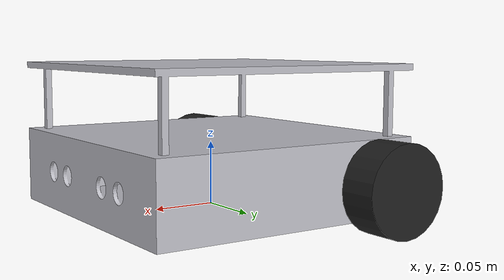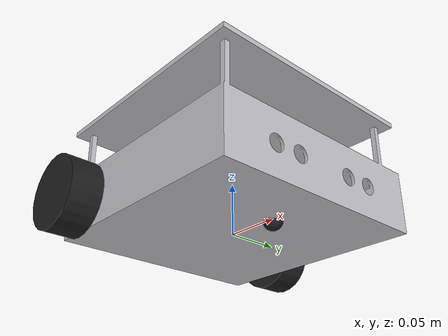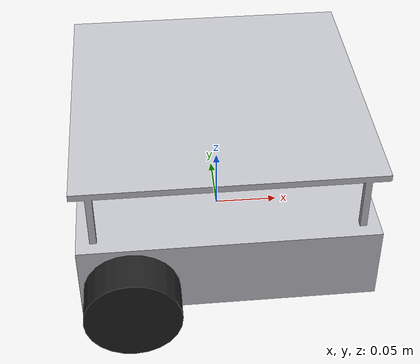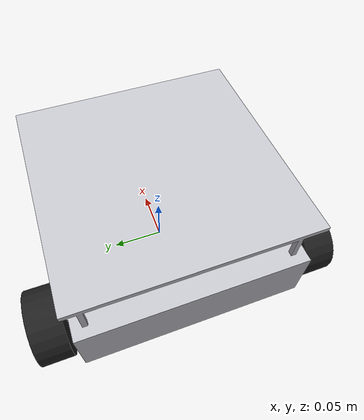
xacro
<?xml version="1.0"?>
<robot xmlns:xacro="http://www.ros.org/wiki/xacro" name="stembot_bringup">

    <xacro:property name="chassis_length" value="0.22" />
    <xacro:property name="chassis_breadth" value="0.22" />
    <xacro:property name="chassis_height" value="0.005" />

    <xacro:property name="frame_mass" value="0.859" />
    <xacro:property name="payload_mass" value="0.0" />

    <xacro:property name="wheel_length" value="0.03" />
    <xacro:property name="wheel_radius" value="0.035" />
    <xacro:property name="chassis_wheel_x_offset" value="${(chassis_length/2)-0.038}" />
    <xacro:property name="chassis_wheel_offset_height" value="${-0.026}" />

    <xacro:property name="wheel_separation" value="0.26" />
    <xacro:property name="wheel_mass" value="0.1" />

    <xacro:property name="caster_pos_x" value="${(chassis_length/2)-0.06}" />
    <xacro:property name="caster_pos_y" value="${(chassis_breadth/2)-0.1}" />

    <!-- Wheel xacro -->
    <xacro:macro name="wheel" params="prefix reflect_x reflect_y">

        <link name="${prefix}_wheel_link">

            <visual>
                <geometry>
                    <cylinder radius="${wheel_radius}" length="${wheel_length}" />
                </geometry>
                <material name="black" />
            </visual>
            <collision>
                <geometry>
                    <cylinder radius="${wheel_radius}" length="${wheel_length}" />
                </geometry>
            </collision>
            <inertial>
                <mass value="${wheel_mass}" />
                <origin xyz="0 0 0" rpy="${pi/2} 0 0" />
                <inertia
                    ixx="${1/12*wheel_mass*(3*(wheel_radius*wheel_radius)+(wheel_length*wheel_length))}"
                    iyy="${1/12*wheel_mass*(3*(wheel_radius*wheel_radius)+(wheel_length*wheel_length))}"
                    izz="${1/2*wheel_mass*(wheel_radius*wheel_radius)}"
                    ixy="0.0" iyz="0.0" ixz="0.0" />
            </inertial>

        </link>

        <joint name="${prefix}_wheel_joint" type="continuous">

            <parent link="base_link" />
            <child link="${prefix}_wheel_link" />
            <origin
                xyz="${-reflect_x*(chassis_wheel_x_offset)} ${-reflect_y*(wheel_separation/2)} ${-(chassis_wheel_offset_height+(chassis_height/2))}"
                rpy="${pi/2} 0 0" />
            <axis xyz="0.0 0.0 -1.0" />
            <limit effort="0.56" velocity="12.56" />

        </joint>

    </xacro:macro>

    <!-- Caster wheel xacro -->
    <xacro:macro name="caster_wheel" params="prefix reflect">

        <link name="${prefix}_caster_link">

            <visual>
                <origin
                    xyz="0 0 0"
                    rpy="0 0 0" />
                <geometry>
                    <sphere radius="0.009" />
                </geometry>
                <material name="black" />
            </visual>
            <collision>
                <origin
                    xyz="0 0 0"
                    rpy="0 0 0" />
                <geometry>
                    <sphere radius="0.009" />
                </geometry>
            </collision>

        </link>
        <joint name="${prefix}_caster_joint" type="fixed">

            <parent link="base_link" />
            <child link="${prefix}_caster_link" />
            <origin xyz="${caster_pos_x} ${-reflect*caster_pos_y} ${-(chassis_wheel_offset_height+(chassis_height/2)+wheel_radius-0.01)}" rpy="0 0 0" />

        </joint>

    </xacro:macro>

    <!-- Frame -->
    <!-- TODO: Fix and verify interial parameters for this -->
    <link name="base_footprint">
    </link>
    <link name="base_link">

        <visual>
            <origin
                xyz="${(chassis_length/2)} ${-(chassis_breadth/2)} ${-chassis_height/2}"
                rpy="0 0 ${pi/2}" />
            <geometry>
                <mesh filename="package://stembot_bringup/urdf/meshes/chassis.stl" />
            </geometry>
            <material name="silver" />
        </visual>
        <collision>
            <origin
                xyz="${(chassis_length/2)} ${-(chassis_breadth/2)} ${-chassis_height/2}"
                rpy="0 0 ${pi/2}" />
            <geometry>
                <mesh filename="package://stembot_bringup/urdf/meshes/chassis.stl" />
            </geometry>
        </collision>
        <inertial>
            <mass value="${frame_mass + payload_mass}" />
            <origin xyz="0.110000 0.110344 0.053552" rpy="0 0 0" />
            <inertia
                ixx="0.000006"
                iyy="0.000006"
                izz="0.000008"
                ixy="0.0" iyz="0.0" ixz="0.0" />
        </inertial>

    </link>
    <joint name="base_joint" type="fixed">

        <parent link="base_footprint" />
        <child link="base_link" />

    </joint>

    <xacro:wheel prefix="right" reflect_x="1" reflect_y="1" />
    <xacro:wheel prefix="left" reflect_x="1" reflect_y="-1" />

    <xacro:caster_wheel prefix="center" reflect="0" />

</robot>
